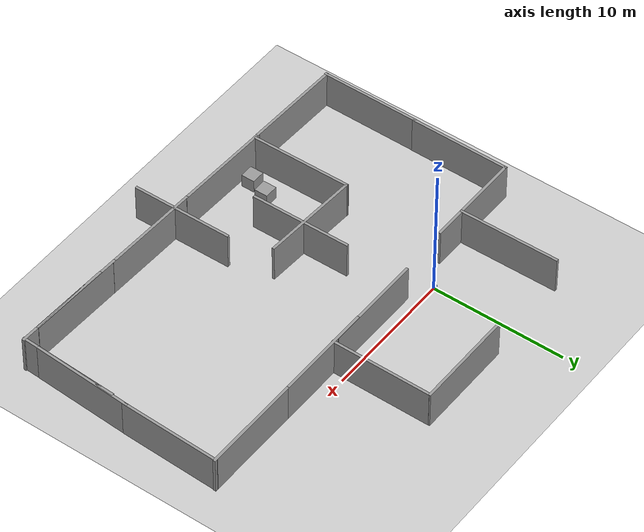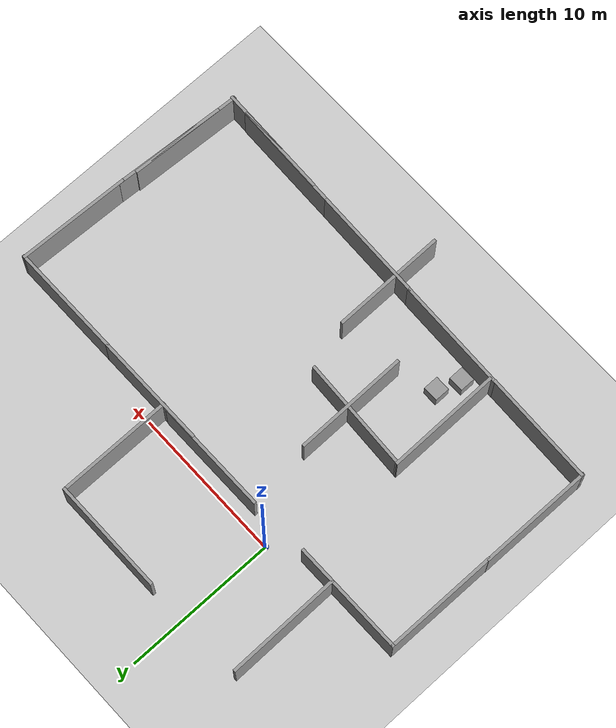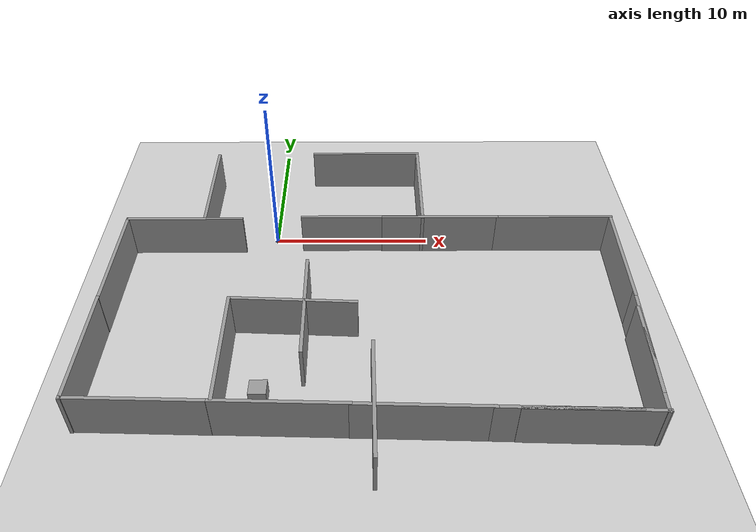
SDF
<sdf version="1.7">
 <world name="default">
  <light name="sun" type="directional">
   <pose>0 0 10 0 -0 0</pose>
   <diffuse>0.8 0.8 0.8 1</diffuse>
   <specular>0.2 0.2 0.2 1</specular>
   <attenuation>
    <range>1000</range>
    <constant>0.9</constant>
    <linear>0.01</linear>
    <quadratic>0.001</quadratic>
   </attenuation>
   <direction>-0.5 0.1 -0.9</direction>
   <spot><inner_angle>0</inner_angle><outer_angle>0</outer_angle><falloff>0</falloff></spot>
  </light>
  <model name="ground_plane">
   <static>1</static>
   <link name="link">
    <collision name="collision">
     <geometry><plane><normal>0 0 1</normal><size>100 100</size></plane></geometry>
     <surface>
      <contact><collide_bitmask>65535</collide_bitmask></contact>
      <friction><ode><mu>100</mu><mu2>50</mu2></ode></friction>
     </surface>
    </collision>
    <visual name="visual">
     <cast_shadows>0</cast_shadows>
     <geometry><plane><normal>0 0 1</normal><size>100 100</size></plane></geometry>
     <material>
      <script><uri>file://media/materials/scripts/gazebo.material</uri><name>Gazebo/Grey</name></script>
     </material>
    </visual>
   </link>
  </model>
  <gravity>0 0 -9.8</gravity>
  <magnetic_field>6e-06 2.3e-05 -4.2e-05</magnetic_field>
  <atmosphere type="adiabatic"/>
  <physics type="ode">
   <max_step_size>0.001</max_step_size>
   <real_time_factor>1</real_time_factor>
   <real_time_update_rate>1000</real_time_update_rate>
  </physics>
  <scene><ambient>0.4 0.4 0.4 1</ambient><background>0.7 0.7 0.7 1</background><shadows>1</shadows></scene>
  <spherical_coordinates>
   <surface_model>EARTH_WGS84</surface_model>
   <latitude_deg>0</latitude_deg>
   <longitude_deg>0</longitude_deg>
   <elevation>0</elevation>
   <heading_deg>0</heading_deg>
  </spherical_coordinates>
  <model name="grey_wall">
   <static>1</static>
   <link name="link">
    <pose>0 0 1.4 0 -0 0</pose>
    <collision name="collision"><geometry><box><size>7.5 0.2 2.8</size></box></geometry></collision>
    <visual name="visual">
     <cast_shadows>0</cast_shadows>
     <geometry><box><size>7.5 0.2 2.8</size></box></geometry>
     <material>
      <script>
       <uri>model://grey_wall/materials/scripts</uri>
       <uri>model://grey_wall/materials/textures</uri>
       <name>vrc/grey_wall</name>
      </script>
     </material>
    </visual>
   </link>
   <pose>-5.72661 -1.05579 0 0 -0 0</pose>
  </model>
  <model name="grey_wall_clone">
   <static>1</static>
   <link name="link">
    <pose>0 0 1.4 0 -0 0</pose>
    <collision name="collision"><geometry><box><size>7.5 0.2 2.8</size></box></geometry></collision>
    <visual name="visual">
     <cast_shadows>0</cast_shadows>
     <geometry><box><size>7.5 0.2 2.8</size></box></geometry>
     <material>
      <script>
       <uri>model://grey_wall/materials/scripts</uri>
       <uri>model://grey_wall/materials/textures</uri>
       <name>vrc/grey_wall</name>
      </script>
     </material>
    </visual>
   </link>
   <pose>10.7401 -0.921867 0 0 -0 0</pose>
  </model>
  <model name="grey_wall_clone_0">
   <static>1</static>
   <link name="link">
    <pose>0 0 1.4 0 -0 0</pose>
    <collision name="collision"><geometry><box><size>7.5 0.2 2.8</size></box></geometry></collision>
    <visual name="visual">
     <cast_shadows>0</cast_shadows>
     <geometry><box><size>7.5 0.2 2.8</size></box></geometry>
     <material>
      <script>
       <uri>model://grey_wall/materials/scripts</uri>
       <uri>model://grey_wall/materials/textures</uri>
       <name>vrc/grey_wall</name>
      </script>
     </material>
    </visual>
   </link>
   <pose>-4.47856 2.62251 0 0 0 -1.56181</pose>
  </model>
  <model name="grey_wall_clone_1">
   <static>1</static>
   <link name="link">
    <pose>0 0 1.4 0 -0 0</pose>
    <collision name="collision"><geometry><box><size>7.5 0.2 2.8</size></box></geometry></collision>
    <visual name="visual">
     <cast_shadows>0</cast_shadows>
     <geometry><box><size>7.5 0.2 2.8</size></box></geometry>
     <material>
      <script>
       <uri>model://grey_wall/materials/scripts</uri>
       <uri>model://grey_wall/materials/textures</uri>
       <name>vrc/grey_wall</name>
      </script>
     </material>
    </visual>
   </link>
   <pose>9.61723 2.70741 -0.00778 0 -0 1.56874</pose>
  </model>
  <model name="grey_wall_clone_2">
   <static>1</static>
   <link name="link">
    <pose>0 0 1.4 0 -0 0</pose>
    <collision name="collision"><geometry><box><size>7.5 0.2 2.8</size></box></geometry></collision>
    <visual name="visual">
     <cast_shadows>0</cast_shadows>
     <geometry><box><size>7.5 0.2 2.8</size></box></geometry>
     <material>
      <script>
       <uri>model://grey_wall/materials/scripts</uri>
       <uri>model://grey_wall/materials/textures</uri>
       <name>vrc/grey_wall</name>
      </script>
     </material>
    </visual>
   </link>
   <pose>5.96181 6.47732 0 0 -0 0</pose>
  </model>
  <model name="grey_wall_clone_3">
   <static>1</static>
   <link name="link">
    <pose>0 0 1.4 0 -0 0</pose>
    <collision name="collision"><geometry><box><size>7.5 0.2 2.8</size></box></geometry></collision>
    <visual name="visual">
     <cast_shadows>0</cast_shadows>
     <geometry><box><size>7.5 0.2 2.8</size></box></geometry>
     <material>
      <script>
       <uri>model://grey_wall/materials/scripts</uri>
       <uri>model://grey_wall/materials/textures</uri>
       <name>vrc/grey_wall</name>
      </script>
     </material>
    </visual>
   </link>
   <pose>-9.40633 -4.72407 0 0 0 -1.57718</pose>
  </model>
  <model name="grey_wall_clone_4">
   <static>1</static>
   <link name="link">
    <pose>0 0 1.4 0 -0 0</pose>
    <collision name="collision"><geometry><box><size>7.5 0.2 2.8</size></box></geometry></collision>
    <visual name="visual">
     <cast_shadows>0</cast_shadows>
     <geometry><box><size>7.5 0.2 2.8</size></box></geometry>
     <material>
      <script>
       <uri>model://grey_wall/materials/scripts</uri>
       <uri>model://grey_wall/materials/textures</uri>
       <name>vrc/grey_wall</name>
      </script>
     </material>
    </visual>
   </link>
   <pose>18.1211 -0.922816 0 0 -0 0</pose>
  </model>
  <model name="grey_wall_clone_5">
   <static>1</static>
   <link name="link">
    <pose>0 0 1.4 0 -0 0</pose>
    <collision name="collision"><geometry><box><size>7.5 0.2 2.8</size></box></geometry></collision>
    <visual name="visual">
     <cast_shadows>0</cast_shadows>
     <geometry><box><size>7.5 0.2 2.8</size></box></geometry>
     <material>
      <script>
       <uri>model://grey_wall/materials/scripts</uri>
       <uri>model://grey_wall/materials/textures</uri>
       <name>vrc/grey_wall</name>
      </script>
     </material>
    </visual>
   </link>
   <pose>21.602 -4.57223 0 0 0 -1.60753</pose>
  </model>
  <model name="grey_wall_clone_5_clone">
   <static>1</static>
   <link name="link">
    <pose>0 0 1.4 0 -0 0</pose>
    <collision name="collision"><geometry><box><size>7.5 0.2 2.8</size></box></geometry></collision>
    <visual name="visual">
     <cast_shadows>0</cast_shadows>
     <geometry><box><size>7.5 0.2 2.8</size></box></geometry>
     <material>
      <script>
       <uri>model://grey_wall/materials/scripts</uri>
       <uri>model://grey_wall/materials/textures</uri>
       <name>vrc/grey_wall</name>
      </script>
     </material>
    </visual>
   </link>
   <pose>21.2451 -11.6938 0 0 0 -1.632</pose>
  </model>
  <model name="grey_wall_clone_3_clone">
   <static>1</static>
   <link name="link">
    <pose>0 0 1.4 0 -0 0</pose>
    <collision name="collision"><geometry><box><size>7.5 0.2 2.8</size></box></geometry></collision>
    <visual name="visual">
     <cast_shadows>0</cast_shadows>
     <geometry><box><size>7.5 0.2 2.8</size></box></geometry>
     <material>
      <script>
       <uri>model://grey_wall/materials/scripts</uri>
       <uri>model://grey_wall/materials/textures</uri>
       <name>vrc/grey_wall</name>
      </script>
     </material>
    </visual>
   </link>
   <pose>-9.47095 -11.9919 0 0 0 -1.57718</pose>
  </model>
  <model name="grey_wall_clone_3_clone_0">
   <static>1</static>
   <link name="link">
    <pose>0 0 1.4 0 -0 0</pose>
    <collision name="collision"><geometry><box><size>7.5 0.2 2.8</size></box></geometry></collision>
    <visual name="visual">
     <cast_shadows>0</cast_shadows>
     <geometry><box><size>7.5 0.2 2.8</size></box></geometry>
     <material>
      <script>
       <uri>model://grey_wall/materials/scripts</uri>
       <uri>model://grey_wall/materials/textures</uri>
       <name>vrc/grey_wall</name>
      </script>
     </material>
    </visual>
   </link>
   <pose>-5.85607 -15.705 -0 0 0 -0.029877</pose>
  </model>
  <model name="grey_wall_clone_3_clone_0_clone">
   <static>1</static>
   <link name="link">
    <pose>0 0 1.4 0 -0 0</pose>
    <collision name="collision"><geometry><box><size>7.5 0.2 2.8</size></box></geometry></collision>
    <visual name="visual">
     <cast_shadows>0</cast_shadows>
     <geometry><box><size>7.5 0.2 2.8</size></box></geometry>
     <material>
      <script>
       <uri>model://grey_wall/materials/scripts</uri>
       <uri>model://grey_wall/materials/textures</uri>
       <name>vrc/grey_wall</name>
      </script>
     </material>
    </visual>
   </link>
   <pose>1.50462 -15.9071 -0 0 0 -0.029877</pose>
  </model>
  <model name="grey_wall_clone_3_clone_0_clone_0">
   <static>1</static>
   <link name="link">
    <pose>0 0 1.4 0 -0 0</pose>
    <collision name="collision"><geometry><box><size>7.5 0.2 2.8</size></box></geometry></collision>
    <visual name="visual">
     <cast_shadows>0</cast_shadows>
     <geometry><box><size>7.5 0.2 2.8</size></box></geometry>
     <material>
      <script>
       <uri>model://grey_wall/materials/scripts</uri>
       <uri>model://grey_wall/materials/textures</uri>
       <name>vrc/grey_wall</name>
      </script>
     </material>
    </visual>
   </link>
   <pose>8.80996 -16.1401 -0 0 0 -0.029877</pose>
  </model>
  <model name="grey_wall_clone_3_clone_0_clone_1">
   <static>1</static>
   <link name="link">
    <pose>0 0 1.4 0 -0 0</pose>
    <collision name="collision"><geometry><box><size>7.5 0.2 2.8</size></box></geometry></collision>
    <visual name="visual">
     <cast_shadows>0</cast_shadows>
     <geometry><box><size>7.5 0.2 2.8</size></box></geometry>
     <material>
      <script>
       <uri>model://grey_wall/materials/scripts</uri>
       <uri>model://grey_wall/materials/textures</uri>
       <name>vrc/grey_wall</name>
      </script>
     </material>
    </visual>
   </link>
   <pose>16.0331 -16.3602 -0 0 0 -0.029877</pose>
  </model>
  <model name="grey_wall_clone_3_clone_0_clone_2">
   <static>1</static>
   <link name="link">
    <pose>0 0 1.4 0 -0 0</pose>
    <collision name="collision"><geometry><box><size>7.5 0.2 2.8</size></box></geometry></collision>
    <visual name="visual">
     <cast_shadows>0</cast_shadows>
     <geometry><box><size>7.5 0.2 2.8</size></box></geometry>
     <material>
      <script>
       <uri>model://grey_wall/materials/scripts</uri>
       <uri>model://grey_wall/materials/textures</uri>
       <name>vrc/grey_wall</name>
      </script>
     </material>
    </visual>
   </link>
   <pose>17.3849 -16.426 -0 0 0 -0.029877</pose>
  </model>
  <model name="grey_wall_clone_3_clone_0_clone_3">
   <static>1</static>
   <link name="link">
    <pose>0 0 1.4 0 -0 0</pose>
    <collision name="collision"><geometry><box><size>7.5 0.2 2.8</size></box></geometry></collision>
    <visual name="visual">
     <cast_shadows>0</cast_shadows>
     <geometry><box><size>7.5 0.2 2.8</size></box></geometry>
     <material>
      <script>
       <uri>model://grey_wall/materials/scripts</uri>
       <uri>model://grey_wall/materials/textures</uri>
       <name>vrc/grey_wall</name>
      </script>
     </material>
    </visual>
   </link>
   <pose>21.1378 -12.9293 0 0 -0 1.51918</pose>
  </model>
  <model name="grey_wall_0">
   <static>1</static>
   <link name="link">
    <pose>0 0 1.4 0 -0 0</pose>
    <collision name="collision"><geometry><box><size>7.5 0.2 2.8</size></box></geometry></collision>
    <visual name="visual">
     <cast_shadows>0</cast_shadows>
     <geometry><box><size>7.5 0.2 2.8</size></box></geometry>
     <material>
      <script>
       <uri>model://grey_wall/materials/scripts</uri>
       <uri>model://grey_wall/materials/textures</uri>
       <name>vrc/grey_wall</name>
      </script>
     </material>
    </visual>
   </link>
   <pose>-1.90357 -12.0577 0 0 0 -1.56306</pose>
  </model>
  <model name="grey_wall_clone_3_clone_0_clone_4">
   <static>1</static>
   <link name="link">
    <pose>0 0 1.4 0 -0 0</pose>
    <collision name="collision"><geometry><box><size>7.5 0.2 2.8</size></box></geometry></collision>
    <visual name="visual">
     <cast_shadows>0</cast_shadows>
     <geometry><box><size>7.5 0.2 2.8</size></box></geometry>
     <material>
      <script>
       <uri>model://grey_wall/materials/scripts</uri>
       <uri>model://grey_wall/materials/textures</uri>
       <name>vrc/grey_wall</name>
      </script>
     </material>
    </visual>
   </link>
   <pose>1.74579 -8.58863 0 0 0 -0.049064</pose>
  </model>
  <model name="unit_box">
   <pose>-0.469869 -14.9774 0.499995 1e-05 -0 0</pose>
   <link name="link">
    <inertial>
     <mass>1</mass>
     <inertia>
      <ixx>0.166667</ixx>
      <ixy>0</ixy>
      <ixz>0</ixz>
      <iyy>0.166667</iyy>
      <iyz>0</iyz>
      <izz>0.166667</izz>
     </inertia>
    </inertial>
    <collision name="collision"><geometry><box><size>1 1 1</size></box></geometry></collision>
    <visual name="visual">
     <geometry><box><size>1 1 1</size></box></geometry>
     <material>
      <script><name>Gazebo/Grey</name><uri>file://media/materials/scripts/gazebo.material</uri></script>
     </material>
    </visual>
   </link>
  </model>
  <model name="unit_box_0">
   <pose>0.085856 -13.4892 0.499995 1e-05 -0 0</pose>
   <link name="link">
    <inertial>
     <mass>1</mass>
     <inertia>
      <ixx>0.166667</ixx>
      <ixy>0</ixy>
      <ixz>0</ixz>
      <iyy>0.166667</iyy>
      <iyz>0</iyz>
      <izz>0.166667</izz>
     </inertia>
    </inertial>
    <collision name="collision"><geometry><box><size>1 1 1</size></box></geometry></collision>
    <visual name="visual">
     <geometry><box><size>1 1 1</size></box></geometry>
     <material>
      <script><name>Gazebo/Grey</name><uri>file://media/materials/scripts/gazebo.material</uri></script>
     </material>
    </visual>
   </link>
  </model>
  <model name="robot">
   <link name="base_footprint">
    <inertial>
     <pose>0 0 0.110522 0 -0 0</pose>
     <mass>20.1</mass>
     <inertia><ixx>0.253764</ixx><ixy>0</ixy><ixz>0</ixz><iyy>0.253764</iyy><iyz>0</iyz><izz>0.41</izz></inertia>
    </inertial>
    <collision name="base_footprint_fixed_joint_lump__base_link_collision">
     <pose>0 0 0.11 0 -0 0</pose>
     <geometry><cylinder><length>0.16</length><radius>0.2</radius></cylinder></geometry>
    </collision>
    <collision name="base_footprint_fixed_joint_lump__laser_link_collision_1">
     <pose>0 0 0.215 0 -0 0</pose>
     <geometry><cylinder><length>0.06</length><radius>0.05</radius></cylinder></geometry>
    </collision>
    <visual name="base_footprint_visual"><geometry><box><size>0.001 0.001 0.001</size></box></geometry></visual>
    <visual name="base_footprint_fixed_joint_lump__base_link_visual_1">
     <pose>0 0 0.11 0 -0 0</pose>
     <geometry><cylinder><length>0.16</length><radius>0.2</radius></cylinder></geometry>
     <material>
      <script><name>Gazebo/Blue</name><uri>file://media/materials/scripts/gazebo.material</uri></script>
     </material>
    </visual>
    <visual name="base_footprint_fixed_joint_lump__laser_link_visual_2">
     <pose>0 0 0.215 0 -0 0</pose>
     <geometry><cylinder><length>0.05</length><radius>0.05</radius></cylinder></geometry>
     <material>
      <script><name>Gazebo/Black</name><uri>file://media/materials/scripts/gazebo.material</uri></script>
     </material>
    </visual>
    <sensor name="rplidar" type="ray">
     <visualize>1</visualize>
     <update_rate>10</update_rate>
     <ray>
      <scan>
       <horizontal>
        <samples>720</samples>
        <resolution>1</resolution>
        <min_angle>-3.14</min_angle>
        <max_angle>3.14</max_angle>
       </horizontal>
       <vertical><samples>1</samples><min_angle>0</min_angle><max_angle>0</max_angle></vertical>
      </scan>
      <range><min>0.1</min><max>20</max><resolution>0.01</resolution></range>
      <noise><type>gaussian</type><mean>0</mean><stddev>0.01</stddev></noise>
     </ray>
     <plugin name="gazebo_rplidar" filename="libgazebo_ros_laser.so">
      <topicName>scan</topicName>
      <frameName>laser_link</frameName>
      <robotNamespace>/</robotNamespace>
     </plugin>
     <pose>0 0 0.215 0 -0 0</pose>
    </sensor>
   </link>
   <joint name="back_caster_joint" type="revolute">
    <pose relative_to="base_footprint">0.18 0 0.015 0 -0 0</pose>
    <parent>base_footprint</parent>
    <child>back_caster_link</child>
    <axis>
     <xyz>0 1 0</xyz>
     <limit><lower>-1e+16</lower><upper>1e+16</upper></limit>
     <dynamics><spring_reference>0</spring_reference><spring_stiffness>0</spring_stiffness></dynamics>
    </axis>
   </joint>
   <link name="back_caster_link">
    <pose relative_to="back_caster_joint">0 0 0 0 -0 0</pose>
    <inertial>
     <mass>0.5</mass>
     <inertia><ixx>4.5e-05</ixx><ixy>0</ixy><ixz>0</ixz><iyy>4.5e-05</iyy><iyz>0</iyz><izz>4.5e-05</izz></inertia>
    </inertial>
    <collision name="back_caster_link_collision">
     <geometry><sphere><radius>0.015</radius></sphere></geometry>
    </collision>
    <visual name="back_caster_link_visual">
     <geometry><sphere><radius>0.015</radius></sphere></geometry>
     <material>
      <script><name>Gazebo/Black</name><uri>file://media/materials/scripts/gazebo.material</uri></script>
     </material>
    </visual>
   </link>
   <joint name="front_caster_joint" type="revolute">
    <pose relative_to="base_footprint">-0.18 0 0.015 0 -0 0</pose>
    <parent>base_footprint</parent>
    <child>front_caster_link</child>
    <axis>
     <xyz>0 1 0</xyz>
     <limit><lower>-1e+16</lower><upper>1e+16</upper></limit>
     <dynamics><spring_reference>0</spring_reference><spring_stiffness>0</spring_stiffness></dynamics>
    </axis>
   </joint>
   <link name="front_caster_link">
    <pose relative_to="front_caster_joint">0 0 0 0 -0 0</pose>
    <inertial>
     <mass>0.5</mass>
     <inertia><ixx>4.5e-05</ixx><ixy>0</ixy><ixz>0</ixz><iyy>4.5e-05</iyy><iyz>0</iyz><izz>4.5e-05</izz></inertia>
    </inertial>
    <collision name="front_caster_link_collision">
     <geometry><sphere><radius>0.015</radius></sphere></geometry>
    </collision>
    <visual name="front_caster_link_visual">
     <geometry><sphere><radius>0.015</radius></sphere></geometry>
     <material>
      <script><name>Gazebo/Black</name><uri>file://media/materials/scripts/gazebo.material</uri></script>
     </material>
    </visual>
   </link>
   <joint name="left_wheel_joint" type="revolute">
    <pose relative_to="base_footprint">0 0.19 0.06 0 -0 0</pose>
    <parent>base_footprint</parent>
    <child>left_wheel_link</child>
    <axis>
     <xyz>0 1 0</xyz>
     <limit><lower>-1e+16</lower><upper>1e+16</upper></limit>
     <dynamics><spring_reference>0</spring_reference><spring_stiffness>0</spring_stiffness></dynamics>
    </axis>
   </joint>
   <link name="left_wheel_link">
    <pose relative_to="left_wheel_joint">0 0 0 0 -0 0</pose>
    <inertial>
     <mass>2</mass>
     <inertia>
      <ixx>0.00190417</ixx>
      <ixy>0</ixy>
      <ixz>0</ixz>
      <iyy>0.00190417</iyy>
      <iyz>0</iyz>
      <izz>0.0036</izz>
     </inertia>
    </inertial>
    <collision name="left_wheel_link_collision">
     <pose>0 0 0 1.5708 -0 0</pose>
     <geometry><cylinder><length>0.025</length><radius>0.06</radius></cylinder></geometry>
    </collision>
    <visual name="left_wheel_link_visual">
     <pose>0 0 0 1.5708 -0 0</pose>
     <geometry><cylinder><length>0.025</length><radius>0.06</radius></cylinder></geometry>
     <material>
      <script><name>Gazebo/Gray</name><uri>file://media/materials/scripts/gazebo.material</uri></script>
     </material>
    </visual>
   </link>
   <joint name="right_wheel_joint" type="revolute">
    <pose relative_to="base_footprint">0 -0.19 0.06 0 -0 0</pose>
    <parent>base_footprint</parent>
    <child>right_wheel_link</child>
    <axis>
     <xyz>0 1 0</xyz>
     <limit><lower>-1e+16</lower><upper>1e+16</upper></limit>
     <dynamics><spring_reference>0</spring_reference><spring_stiffness>0</spring_stiffness></dynamics>
    </axis>
   </joint>
   <link name="right_wheel_link">
    <pose relative_to="right_wheel_joint">0 0 0 0 -0 0</pose>
    <inertial>
     <mass>2</mass>
     <inertia>
      <ixx>0.00190417</ixx>
      <ixy>0</ixy>
      <ixz>0</ixz>
      <iyy>0.00190417</iyy>
      <iyz>0</iyz>
      <izz>0.0036</izz>
     </inertia>
    </inertial>
    <collision name="right_wheel_link_collision">
     <pose>0 0 0 1.5708 -0 0</pose>
     <geometry><cylinder><length>0.025</length><radius>0.06</radius></cylinder></geometry>
    </collision>
    <visual name="right_wheel_link_visual">
     <pose>0 0 0 1.5708 -0 0</pose>
     <geometry><cylinder><length>0.025</length><radius>0.06</radius></cylinder></geometry>
     <material>
      <script><name>Gazebo/Gray</name><uri>file://media/materials/scripts/gazebo.material</uri></script>
     </material>
    </visual>
   </link>
   <static>0</static>
   <plugin name="differential_drive_controller" filename="libgazebo_ros_diff_drive.so">
    <rosDebugLevel>Debug</rosDebugLevel>
    <publishWheelTF>0</publishWheelTF>
    <robotNamespace>/</robotNamespace>
    <publishTf>1</publishTf>
    <publishWheelJointState>0</publishWheelJointState>
    <alwaysOn>1</alwaysOn>
    <updateRate>100.0</updateRate>
    <legacyMode>1</legacyMode>
    <leftJoint>left_wheel_joint</leftJoint>
    <rightJoint>right_wheel_joint</rightJoint>
    <wheelSeparation>0.38</wheelSeparation>
    <wheelDiameter>0.12</wheelDiameter>
    <broadcastTF>1</broadcastTF>
    <wheelTorque>30</wheelTorque>
    <wheelAcceleration>1.8</wheelAcceleration>
    <commandTopic>cmd_vel</commandTopic>
    <odometryFrame>/odom</odometryFrame>
    <odometryTopic>odom</odometryTopic>
    <robotBaseFrame>/base_footprint</robotBaseFrame>
   </plugin>
   <pose>-0.000337 0.000365 0 -0 -0 -1.8e-05</pose>
  </model>
  <model name="grey_wall_1">
   <static>1</static>
   <link name="link">
    <pose>0 0 1.4 0 -0 0</pose>
    <collision name="collision"><geometry><box><size>7.5 0.2 2.8</size></box></geometry></collision>
    <visual name="visual">
     <cast_shadows>0</cast_shadows>
     <geometry><box><size>7.5 0.2 2.8</size></box></geometry>
     <material>
      <script>
       <uri>model://grey_wall/materials/scripts</uri>
       <uri>model://grey_wall/materials/textures</uri>
       <name>vrc/grey_wall</name>
      </script>
     </material>
    </visual>
   </link>
   <pose>2.42933 -8.86487 0 0 -0 1.57834</pose>
  </model>
  <model name="grey_wall_1_clone">
   <static>1</static>
   <link name="link">
    <pose>0 0 1.4 0 -0 0</pose>
    <collision name="collision"><geometry><box><size>7.5 0.2 2.8</size></box></geometry></collision>
    <visual name="visual">
     <cast_shadows>0</cast_shadows>
     <geometry><box><size>7.5 0.2 2.8</size></box></geometry>
     <material>
      <script>
       <uri>model://grey_wall/materials/scripts</uri>
       <uri>model://grey_wall/materials/textures</uri>
       <name>vrc/grey_wall</name>
      </script>
     </material>
    </visual>
   </link>
   <pose>6.34345 -15.4754 0 0 -0 1.57834</pose>
  </model>
  <model name="grey_wall_1_clone_0">
   <static>1</static>
   <link name="link">
    <pose>0 0 1.4 0 -0 0</pose>
    <collision name="collision"><geometry><box><size>7.5 0.2 2.8</size></box></geometry></collision>
    <visual name="visual">
     <cast_shadows>0</cast_shadows>
     <geometry><box><size>7.5 0.2 2.8</size></box></geometry>
     <material>
      <script>
       <uri>model://grey_wall/materials/scripts</uri>
       <uri>model://grey_wall/materials/textures</uri>
       <name>vrc/grey_wall</name>
      </script>
     </material>
    </visual>
   </link>
   <pose>5.51043 -0.892049 0 0 -0 0.001456</pose>
  </model>
 </world>
</sdf>
